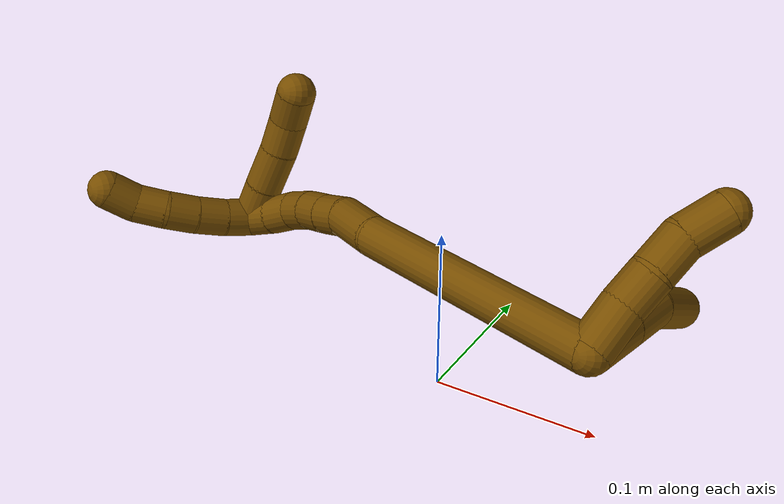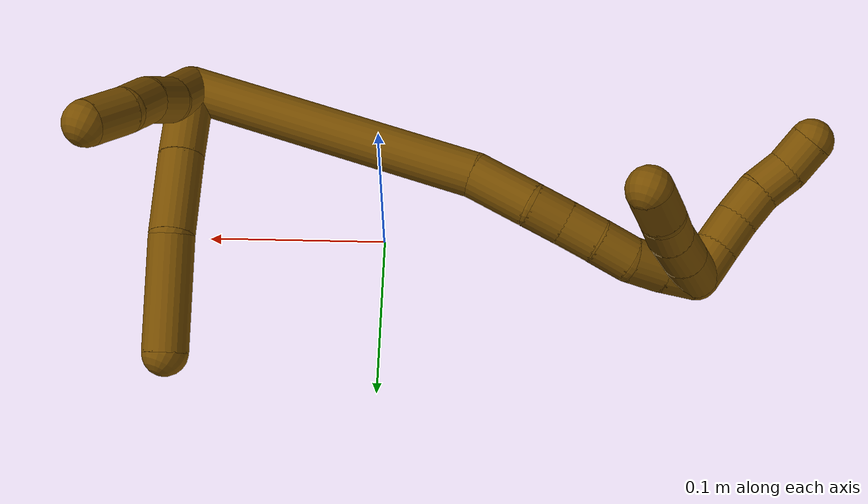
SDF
<sdf version="1.7">
 <world name="default">
  <model name="photoneo_s_sensor">
   <static>1</static>
   <pose>0 0 2 1.57079 1.57079 3.14159</pose>
   <link name="link">
    <inertial><mass>0.1</mass></inertial>
    <sensor name="sensor" type="depth">
     <update_rate>30</update_rate>
     <camera>
      <horizontal_fov>1.22</horizontal_fov>
      <image><width>1920</width><height>1200</height><format>B8G8R8</format></image>
      <clip><near>0.1</near><far>4</far></clip>
      <depth_camera><output>points</output></depth_camera>
     </camera>
     <plugin name="camera_plugin" filename="libgazebo_ros_depth_camera.so">
      <baseline>0.2</baseline>
      <alwaysOn>1</alwaysOn>
      <updateRate>0.0</updateRate>
      <cameraName>camera_ir</cameraName>
      <imageTopicName>/camera/color/image_raw</imageTopicName>
      <cameraInfoTopicName>/camera/color/camera_info</cameraInfoTopicName>
      <depthImageTopicName>/camera/depth/image_raw</depthImageTopicName>
      <depthImageCameraInfoTopicName>/camera/depth/camera_info</depthImageCameraInfoTopicName>
      <pointCloudTopicName>/camera/depth/points</pointCloudTopicName>
      <frameName>fr_optical</frameName>
      <pointCloudCutoff>0.1</pointCloudCutoff>
      <pointCloudCutoffMax>2.0</pointCloudCutoffMax>
      <distortionK1>0</distortionK1>
      <distortionK2>0</distortionK2>
      <distortionK3>0</distortionK3>
      <distortionT1>0</distortionT1>
      <distortionT2>0</distortionT2>
      <CxPrime>0</CxPrime>
      <Cx>0</Cx>
      <Cy>0</Cy>
      <focalLength>0</focalLength>
      <hackBaseline>0</hackBaseline>
     </plugin>
    </sensor>
   </link>
  </model>
  <model name="bin">
   <static>1</static>
   <link name="bottom">
    <collision name="collision-bottom">
     <pose>0 0 -0.01 0 -0 0</pose>
     <geometry><box><size>0.8 0.6 0.02</size></box></geometry>
     <surface>
      <friction><ode><mu>100</mu><mu2>100</mu2></ode></friction>
      <contact><collide_bitmask>65535</collide_bitmask></contact>
     </surface>
    </collision>
   </link>
   <link name="west_wall">
    <collision name="collision-west_wall">
     <pose>-0.41 0 0.1 0 -0 0</pose>
     <geometry><box><size>0.02 0.6 0.2</size></box></geometry>
     <surface>
      <friction><ode><mu>100</mu><mu2>100</mu2></ode></friction>
      <contact><collide_bitmask>65535</collide_bitmask></contact>
     </surface>
    </collision>
   </link>
   <link name="east_wall">
    <collision name="collision-east_wall">
     <pose>0.41 0 0.1 0 -0 0</pose>
     <geometry><box><size>0.02 0.6 0.2</size></box></geometry>
     <surface>
      <friction><ode><mu>100</mu><mu2>100</mu2></ode></friction>
      <contact><collide_bitmask>65535</collide_bitmask></contact>
     </surface>
    </collision>
   </link>
   <link name="south_wall">
    <collision name="collision-south_wall">
     <pose>0 -0.31 0.1 0 -0 0</pose>
     <geometry><box><size>0.8 0.02 0.2</size></box></geometry>
     <surface>
      <friction><ode><mu>100</mu><mu2>100</mu2></ode></friction>
      <contact><collide_bitmask>65535</collide_bitmask></contact>
     </surface>
    </collision>
   </link>
   <link name="north_wall">
    <collision name="collision-north_wall">
     <pose>0 0.31 0.1 0 -0 0</pose>
     <geometry><box><size>0.8 0.02 0.2</size></box></geometry>
     <surface>
      <friction><ode><mu>100</mu><mu2>100</mu2></ode></friction>
      <contact><collide_bitmask>65535</collide_bitmask></contact>
     </surface>
    </collision>
   </link>
  </model>
  <model name="12">
   <static>0</static>
   <link name="12">
    <collision name="collision-cylinder-e_1_2_8">
     <pose>-0.006077 0.000984 0.019783 -0.049717 -0.297708 0.007457</pose>
     <geometry><cylinder><radius>0.0125</radius><length>0.041438</length></cylinder></geometry>
     <surface>
      <friction><ode><mu>1.16</mu><mu2>1.16</mu2><slip1>0</slip1><slip2>0</slip2></ode></friction>
      <contact><ode><kp>1e+06</kp><kd>1</kd><max_vel>0</max_vel><min_depth>0.001</min_depth></ode></contact>
     </surface>
    </collision>
    <visual name="visual-cylinder-e_1_2_8">
     <pose>-0.006077 0.000984 0.019783 -0.049717 -0.297708 0.007457</pose>
     <geometry><cylinder><radius>0.0125</radius><length>0.041438</length></cylinder></geometry>
     <material><ambient>0.466667 0.301961 0 1</ambient></material>
    </visual>
    <collision name="collision-cylinder-e_2_8_9">
     <pose>-0.019245 0.003773 0.061325 -0.082748 -0.313986 0.013106</pose>
     <geometry><cylinder><radius>0.0125</radius><length>0.045911</length></cylinder></geometry>
     <surface>
      <friction><ode><mu>1.16</mu><mu2>1.16</mu2><slip1>0</slip1><slip2>0</slip2></ode></friction>
      <contact><ode><kp>1e+06</kp><kd>1</kd><max_vel>0</max_vel><min_depth>0.001</min_depth></ode></contact>
     </surface>
    </collision>
    <visual name="visual-cylinder-e_2_8_9">
     <pose>-0.019245 0.003773 0.061325 -0.082748 -0.313986 0.013106</pose>
     <geometry><cylinder><radius>0.0125</radius><length>0.045911</length></cylinder></geometry>
     <material><ambient>0.466667 0.301961 0 1</ambient></material>
    </visual>
    <collision name="collision-cylinder-e_3_9_6">
     <pose>-0.033481 0.016056 0.111726 -0.350706 -0.230165 0.040954</pose>
     <geometry><cylinder><radius>0.0125</radius><length>0.062651</length></cylinder></geometry>
     <surface>
      <friction><ode><mu>1.16</mu><mu2>1.16</mu2><slip1>0</slip1><slip2>0</slip2></ode></friction>
      <contact><ode><kp>1e+06</kp><kd>1</kd><max_vel>0</max_vel><min_depth>0.001</min_depth></ode></contact>
     </surface>
    </collision>
    <visual name="visual-cylinder-e_3_9_6">
     <pose>-0.033481 0.016056 0.111726 -0.350706 -0.230165 0.040954</pose>
     <geometry><cylinder><radius>0.0125</radius><length>0.062651</length></cylinder></geometry>
     <material><ambient>0.466667 0.301961 0 1</ambient></material>
    </visual>
    <collision name="collision-cylinder-e_1_2_10">
     <pose>-0.002955 -0.010514 0.009181 0.853023 -0.208597 -0.095061</pose>
     <geometry><cylinder><radius>0.0125</radius><length>0.028535</length></cylinder></geometry>
     <surface>
      <friction><ode><mu>1.16</mu><mu2>1.16</mu2><slip1>0</slip1><slip2>0</slip2></ode></friction>
      <contact><ode><kp>1e+06</kp><kd>1</kd><max_vel>0</max_vel><min_depth>0.001</min_depth></ode></contact>
     </surface>
    </collision>
    <visual name="visual-cylinder-e_1_2_10">
     <pose>-0.002955 -0.010514 0.009181 0.853023 -0.208597 -0.095061</pose>
     <geometry><cylinder><radius>0.0125</radius><length>0.028535</length></cylinder></geometry>
     <material><ambient>0.466667 0.301961 0 1</ambient></material>
    </visual>
    <collision name="collision-cylinder-e_2_10_11">
     <pose>-0.006327 -0.030459 0.023906 1.03926 -0.038142 -0.021822</pose>
     <geometry><cylinder><radius>0.0125</radius><length>0.021894</length></cylinder></geometry>
     <surface>
      <friction><ode><mu>1.16</mu><mu2>1.16</mu2><slip1>0</slip1><slip2>0</slip2></ode></friction>
      <contact><ode><kp>1e+06</kp><kd>1</kd><max_vel>0</max_vel><min_depth>0.001</min_depth></ode></contact>
     </surface>
    </collision>
    <visual name="visual-cylinder-e_2_10_11">
     <pose>-0.006327 -0.030459 0.023906 1.03926 -0.038142 -0.021822</pose>
     <geometry><cylinder><radius>0.0125</radius><length>0.021894</length></cylinder></geometry>
     <material><ambient>0.466667 0.301961 0 1</ambient></material>
    </visual>
    <collision name="collision-cylinder-e_3_11_12">
     <pose>-0.00838 -0.048446 0.037348 0.825452 -0.139558 -0.061189</pose>
     <geometry><cylinder><radius>0.0125</radius><length>0.023518</length></cylinder></geometry>
     <surface>
      <friction><ode><mu>1.16</mu><mu2>1.16</mu2><slip1>0</slip1><slip2>0</slip2></ode></friction>
      <contact><ode><kp>1e+06</kp><kd>1</kd><max_vel>0</max_vel><min_depth>0.001</min_depth></ode></contact>
     </surface>
    </collision>
    <visual name="visual-cylinder-e_3_11_12">
     <pose>-0.00838 -0.048446 0.037348 0.825452 -0.139558 -0.061189</pose>
     <geometry><cylinder><radius>0.0125</radius><length>0.023518</length></cylinder></geometry>
     <material><ambient>0.466667 0.301961 0 1</ambient></material>
    </visual>
    <collision name="collision-cylinder-e_4_12_5">
     <pose>-0.007876 -0.06578 0.05463 0.752018 0.16502 0.065274</pose>
     <geometry><cylinder><radius>0.0125</radius><length>0.026053</length></cylinder></geometry>
     <surface>
      <friction><ode><mu>1.16</mu><mu2>1.16</mu2><slip1>0</slip1><slip2>0</slip2></ode></friction>
      <contact><ode><kp>1e+06</kp><kd>1</kd><max_vel>0</max_vel><min_depth>0.001</min_depth></ode></contact>
     </surface>
    </collision>
    <visual name="visual-cylinder-e_4_12_5">
     <pose>-0.007876 -0.06578 0.05463 0.752018 0.16502 0.065274</pose>
     <geometry><cylinder><radius>0.0125</radius><length>0.026053</length></cylinder></geometry>
     <material><ambient>0.466667 0.301961 0 1</ambient></material>
    </visual>
    <collision name="collision-cylinder-e_1_2_13">
     <pose>-0.079486 0.021664 -0.003107 -1.71322 -1.30212 1.44209</pose>
     <geometry><cylinder><radius>0.0125</radius><length>0.164888</length></cylinder></geometry>
     <surface>
      <friction><ode><mu>1.16</mu><mu2>1.16</mu2><slip1>0</slip1><slip2>0</slip2></ode></friction>
      <contact><ode><kp>1e+06</kp><kd>1</kd><max_vel>0</max_vel><min_depth>0.001</min_depth></ode></contact>
     </surface>
    </collision>
    <visual name="visual-cylinder-e_1_2_13">
     <pose>-0.079486 0.021664 -0.003107 -1.71322 -1.30212 1.44209</pose>
     <geometry><cylinder><radius>0.0125</radius><length>0.164888</length></cylinder></geometry>
     <material><ambient>0.466667 0.301961 0 1</ambient></material>
    </visual>
    <collision name="collision-cylinder-e_2_13_14">
     <pose>-0.175497 0.04813 -0.003555 -1.0653 -1.25011 0.804335</pose>
     <geometry><cylinder><radius>0.0125</radius><length>0.034825</length></cylinder></geometry>
     <surface>
      <friction><ode><mu>1.16</mu><mu2>1.16</mu2><slip1>0</slip1><slip2>0</slip2></ode></friction>
      <contact><ode><kp>1e+06</kp><kd>1</kd><max_vel>0</max_vel><min_depth>0.001</min_depth></ode></contact>
     </surface>
    </collision>
    <visual name="visual-cylinder-e_2_13_14">
     <pose>-0.175497 0.04813 -0.003555 -1.0653 -1.25011 0.804335</pose>
     <geometry><cylinder><radius>0.0125</radius><length>0.034825</length></cylinder></geometry>
     <material><ambient>0.466667 0.301961 0 1</ambient></material>
    </visual>
    <collision name="collision-cylinder-e_3_14_15">
     <pose>-0.200653 0.057946 -0.000233 -1.43911 -1.04079 0.930789</pose>
     <geometry><cylinder><radius>0.0125</radius><length>0.020007</length></cylinder></geometry>
     <surface>
      <friction><ode><mu>1.16</mu><mu2>1.16</mu2><slip1>0</slip1><slip2>0</slip2></ode></friction>
      <contact><ode><kp>1e+06</kp><kd>1</kd><max_vel>0</max_vel><min_depth>0.001</min_depth></ode></contact>
     </surface>
    </collision>
    <visual name="visual-cylinder-e_3_14_15">
     <pose>-0.200653 0.057946 -0.000233 -1.43911 -1.04079 0.930789</pose>
     <geometry><cylinder><radius>0.0125</radius><length>0.020007</length></cylinder></geometry>
     <material><ambient>0.466667 0.301961 0 1</ambient></material>
    </visual>
    <collision name="collision-cylinder-e_4_15_16">
     <pose>-0.218144 0.067677 0.001405 -1.36724 -1.07276 0.902077</pose>
     <geometry><cylinder><radius>0.0125</radius><length>0.02017</length></cylinder></geometry>
     <surface>
      <friction><ode><mu>1.16</mu><mu2>1.16</mu2><slip1>0</slip1><slip2>0</slip2></ode></friction>
      <contact><ode><kp>1e+06</kp><kd>1</kd><max_vel>0</max_vel><min_depth>0.001</min_depth></ode></contact>
     </surface>
    </collision>
    <visual name="visual-cylinder-e_4_15_16">
     <pose>-0.218144 0.067677 0.001405 -1.36724 -1.07276 0.902077</pose>
     <geometry><cylinder><radius>0.0125</radius><length>0.02017</length></cylinder></geometry>
     <material><ambient>0.466667 0.301961 0 1</ambient></material>
    </visual>
    <collision name="collision-cylinder-e_5_16_17">
     <pose>-0.235207 0.078092 0.003073 -1.44956 -0.960352 0.864309</pose>
     <geometry><cylinder><radius>0.0125</radius><length>0.020024</length></cylinder></geometry>
     <surface>
      <friction><ode><mu>1.16</mu><mu2>1.16</mu2><slip1>0</slip1><slip2>0</slip2></ode></friction>
      <contact><ode><kp>1e+06</kp><kd>1</kd><max_vel>0</max_vel><min_depth>0.001</min_depth></ode></contact>
     </surface>
    </collision>
    <visual name="visual-cylinder-e_5_16_17">
     <pose>-0.235207 0.078092 0.003073 -1.44956 -0.960352 0.864309</pose>
     <geometry><cylinder><radius>0.0125</radius><length>0.020024</length></cylinder></geometry>
     <material><ambient>0.466667 0.301961 0 1</ambient></material>
    </visual>
    <collision name="collision-cylinder-e_6_17_18">
     <pose>-0.250598 0.090486 0.001861 -1.84799 -0.801209 1.02221</pose>
     <geometry><cylinder><radius>0.0125</radius><length>0.020013</length></cylinder></geometry>
     <surface>
      <friction><ode><mu>1.16</mu><mu2>1.16</mu2><slip1>0</slip1><slip2>0</slip2></ode></friction>
      <contact><ode><kp>1e+06</kp><kd>1</kd><max_vel>0</max_vel><min_depth>0.001</min_depth></ode></contact>
     </surface>
    </collision>
    <visual name="visual-cylinder-e_6_17_18">
     <pose>-0.250598 0.090486 0.001861 -1.84799 -0.801209 1.02221</pose>
     <geometry><cylinder><radius>0.0125</radius><length>0.020013</length></cylinder></geometry>
     <material><ambient>0.466667 0.301961 0 1</ambient></material>
    </visual>
    <collision name="collision-cylinder-e_7_18_1">
     <pose>-0.26541 0.103184 -0.002608 -1.9745 -0.86294 1.21784</pose>
     <geometry><cylinder><radius>0.0125</radius><length>0.020074</length></cylinder></geometry>
     <surface>
      <friction><ode><mu>1.16</mu><mu2>1.16</mu2><slip1>0</slip1><slip2>0</slip2></ode></friction>
      <contact><ode><kp>1e+06</kp><kd>1</kd><max_vel>0</max_vel><min_depth>0.001</min_depth></ode></contact>
     </surface>
    </collision>
    <visual name="visual-cylinder-e_7_18_1">
     <pose>-0.26541 0.103184 -0.002608 -1.9745 -0.86294 1.21784</pose>
     <geometry><cylinder><radius>0.0125</radius><length>0.020074</length></cylinder></geometry>
     <material><ambient>0.466667 0.301961 0 1</ambient></material>
    </visual>
    <collision name="collision-cylinder-e_1_1_19">
     <pose>-0.275072 0.109943 -0.014932 -3.0642 -0.205069 2.42187</pose>
     <geometry><cylinder><radius>0.0125</radius><length>0.02</length></cylinder></geometry>
     <surface>
      <friction><ode><mu>1.16</mu><mu2>1.16</mu2><slip1>0</slip1><slip2>0</slip2></ode></friction>
      <contact><ode><kp>1e+06</kp><kd>1</kd><max_vel>0</max_vel><min_depth>0.001</min_depth></ode></contact>
     </surface>
    </collision>
    <visual name="visual-cylinder-e_1_1_19">
     <pose>-0.275072 0.109943 -0.014932 -3.0642 -0.205069 2.42187</pose>
     <geometry><cylinder><radius>0.0125</radius><length>0.02</length></cylinder></geometry>
     <material><ambient>0.466667 0.301961 0 1</ambient></material>
    </visual>
    <collision name="collision-cylinder-e_2_19_20">
     <pose>-0.279694 0.11063 -0.034353 3.13433 -0.261535 -3.08641</pose>
     <geometry><cylinder><radius>0.0125</radius><length>0.02</length></cylinder></geometry>
     <surface>
      <friction><ode><mu>1.16</mu><mu2>1.16</mu2><slip1>0</slip1><slip2>0</slip2></ode></friction>
      <contact><ode><kp>1e+06</kp><kd>1</kd><max_vel>0</max_vel><min_depth>0.001</min_depth></ode></contact>
     </surface>
    </collision>
    <visual name="visual-cylinder-e_2_19_20">
     <pose>-0.279694 0.11063 -0.034353 3.13433 -0.261535 -3.08641</pose>
     <geometry><cylinder><radius>0.0125</radius><length>0.02</length></cylinder></geometry>
     <material><ambient>0.466667 0.301961 0 1</ambient></material>
    </visual>
    <collision name="collision-cylinder-e_3_20_21">
     <pose>-0.285709 0.110106 -0.053396 3.09335 -0.350082 -2.87041</pose>
     <geometry><cylinder><radius>0.0125</radius><length>0.02</length></cylinder></geometry>
     <surface>
      <friction><ode><mu>1.16</mu><mu2>1.16</mu2><slip1>0</slip1><slip2>0</slip2></ode></friction>
      <contact><ode><kp>1e+06</kp><kd>1</kd><max_vel>0</max_vel><min_depth>0.001</min_depth></ode></contact>
     </surface>
    </collision>
    <visual name="visual-cylinder-e_3_20_21">
     <pose>-0.285709 0.110106 -0.053396 3.09335 -0.350082 -2.87041</pose>
     <geometry><cylinder><radius>0.0125</radius><length>0.02</length></cylinder></geometry>
     <material><ambient>0.466667 0.301961 0 1</ambient></material>
    </visual>
    <collision name="collision-cylinder-e_4_21_22">
     <pose>-0.294464 0.109937 -0.071237 -3.10804 -0.5616 3.02537</pose>
     <geometry><cylinder><radius>0.0125</radius><length>0.02</length></cylinder></geometry>
     <surface>
      <friction><ode><mu>1.16</mu><mu2>1.16</mu2><slip1>0</slip1><slip2>0</slip2></ode></friction>
      <contact><ode><kp>1e+06</kp><kd>1</kd><max_vel>0</max_vel><min_depth>0.001</min_depth></ode></contact>
     </surface>
    </collision>
    <visual name="visual-cylinder-e_4_21_22">
     <pose>-0.294464 0.109937 -0.071237 -3.10804 -0.5616 3.02537</pose>
     <geometry><cylinder><radius>0.0125</radius><length>0.02</length></cylinder></geometry>
     <material><ambient>0.466667 0.301961 0 1</ambient></material>
    </visual>
    <collision name="collision-cylinder-e_5_22_4">
     <pose>-0.304321 0.107481 -0.088179 2.82915 -0.470309 -1.97846</pose>
     <geometry><cylinder><radius>0.0125</radius><length>0.02</length></cylinder></geometry>
     <surface>
      <friction><ode><mu>1.16</mu><mu2>1.16</mu2><slip1>0</slip1><slip2>0</slip2></ode></friction>
      <contact><ode><kp>1e+06</kp><kd>1</kd><max_vel>0</max_vel><min_depth>0.001</min_depth></ode></contact>
     </surface>
    </collision>
    <visual name="visual-cylinder-e_5_22_4">
     <pose>-0.304321 0.107481 -0.088179 2.82915 -0.470309 -1.97846</pose>
     <geometry><cylinder><radius>0.0125</radius><length>0.02</length></cylinder></geometry>
     <material><ambient>0.466667 0.301961 0 1</ambient></material>
    </visual>
    <collision name="collision-cylinder-e_1_1_23">
     <pose>-0.272431 0.095715 -0.004733 1.53827 0.044824 0.04339</pose>
     <geometry><cylinder><radius>0.0125</radius><length>0.026983</length></cylinder></geometry>
     <surface>
      <friction><ode><mu>1.16</mu><mu2>1.16</mu2><slip1>0</slip1><slip2>0</slip2></ode></friction>
      <contact><ode><kp>1e+06</kp><kd>1</kd><max_vel>0</max_vel><min_depth>0.001</min_depth></ode></contact>
     </surface>
    </collision>
    <visual name="visual-cylinder-e_1_1_23">
     <pose>-0.272431 0.095715 -0.004733 1.53827 0.044824 0.04339</pose>
     <geometry><cylinder><radius>0.0125</radius><length>0.026983</length></cylinder></geometry>
     <material><ambient>0.466667 0.301961 0 1</ambient></material>
    </visual>
    <collision name="collision-cylinder-e_2_23_24">
     <pose>-0.271357 0.068042 -0.003321 1.50237 0.03298 0.030798</pose>
     <geometry><cylinder><radius>0.0125</radius><length>0.028485</length></cylinder></geometry>
     <surface>
      <friction><ode><mu>1.16</mu><mu2>1.16</mu2><slip1>0</slip1><slip2>0</slip2></ode></friction>
      <contact><ode><kp>1e+06</kp><kd>1</kd><max_vel>0</max_vel><min_depth>0.001</min_depth></ode></contact>
     </surface>
    </collision>
    <visual name="visual-cylinder-e_2_23_24">
     <pose>-0.271357 0.068042 -0.003321 1.50237 0.03298 0.030798</pose>
     <geometry><cylinder><radius>0.0125</radius><length>0.028485</length></cylinder></geometry>
     <material><ambient>0.466667 0.301961 0 1</ambient></material>
    </visual>
    <collision name="collision-cylinder-e_3_24_25">
     <pose>-0.271304 0.042808 -0.002134 1.55141 -0.037781 -0.037056</pose>
     <geometry><cylinder><radius>0.0125</radius><length>0.022084</length></cylinder></geometry>
     <surface>
      <friction><ode><mu>1.16</mu><mu2>1.16</mu2><slip1>0</slip1><slip2>0</slip2></ode></friction>
      <contact><ode><kp>1e+06</kp><kd>1</kd><max_vel>0</max_vel><min_depth>0.001</min_depth></ode></contact>
     </surface>
    </collision>
    <visual name="visual-cylinder-e_3_24_25">
     <pose>-0.271304 0.042808 -0.002134 1.55141 -0.037781 -0.037056</pose>
     <geometry><cylinder><radius>0.0125</radius><length>0.022084</length></cylinder></geometry>
     <material><ambient>0.466667 0.301961 0 1</ambient></material>
    </visual>
    <collision name="collision-cylinder-e_4_25_3">
     <pose>-0.270037 0.020825 -0.003707 1.73248 0.150647 0.177081</pose>
     <geometry><cylinder><radius>0.0125</radius><length>0.022447</length></cylinder></geometry>
     <surface>
      <friction><ode><mu>1.16</mu><mu2>1.16</mu2><slip1>0</slip1><slip2>0</slip2></ode></friction>
      <contact><ode><kp>1e+06</kp><kd>1</kd><max_vel>0</max_vel><min_depth>0.001</min_depth></ode></contact>
     </surface>
    </collision>
    <visual name="visual-cylinder-e_4_25_3">
     <pose>-0.270037 0.020825 -0.003707 1.73248 0.150647 0.177081</pose>
     <geometry><cylinder><radius>0.0125</radius><length>0.022447</length></cylinder></geometry>
     <material><ambient>0.466667 0.301961 0 1</ambient></material>
    </visual>
    <collision name="collision-sphere-3">
     <pose>-0.268352 0.009873 -0.005493 0 -0 0</pose>
     <geometry><sphere><radius>0.0125</radius></sphere></geometry>
     <surface>
      <friction><ode><mu>1.16</mu><mu2>1.16</mu2><slip1>0</slip1><slip2>0</slip2></ode></friction>
      <contact><ode><kp>1e+06</kp><kd>1</kd><max_vel>0</max_vel><min_depth>0.001</min_depth></ode></contact>
     </surface>
    </collision>
    <visual name="visual-sphere-3">
     <pose>-0.268352 0.009873 -0.005493 0 -0 0</pose>
     <geometry><sphere><radius>0.0125</radius></sphere></geometry>
     <material><ambient>0.466667 0.301961 0 1</ambient></material>
    </visual>
    <collision name="collision-sphere-25">
     <pose>-0.271721 0.031776 -0.00192 0 -0 0</pose>
     <geometry><sphere><radius>0.0125</radius></sphere></geometry>
     <surface>
      <friction><ode><mu>1.16</mu><mu2>1.16</mu2><slip1>0</slip1><slip2>0</slip2></ode></friction>
      <contact><ode><kp>1e+06</kp><kd>1</kd><max_vel>0</max_vel><min_depth>0.001</min_depth></ode></contact>
     </surface>
    </collision>
    <visual name="visual-sphere-25">
     <pose>-0.271721 0.031776 -0.00192 0 -0 0</pose>
     <geometry><sphere><radius>0.0125</radius></sphere></geometry>
     <material><ambient>0.466667 0.301961 0 1</ambient></material>
    </visual>
    <collision name="collision-sphere-24">
     <pose>-0.270887 0.053841 -0.002348 0 -0 0</pose>
     <geometry><sphere><radius>0.0125</radius></sphere></geometry>
     <surface>
      <friction><ode><mu>1.16</mu><mu2>1.16</mu2><slip1>0</slip1><slip2>0</slip2></ode></friction>
      <contact><ode><kp>1e+06</kp><kd>1</kd><max_vel>0</max_vel><min_depth>0.001</min_depth></ode></contact>
     </surface>
    </collision>
    <visual name="visual-sphere-24">
     <pose>-0.270887 0.053841 -0.002348 0 -0 0</pose>
     <geometry><sphere><radius>0.0125</radius></sphere></geometry>
     <material><ambient>0.466667 0.301961 0 1</ambient></material>
    </visual>
    <collision name="collision-sphere-23">
     <pose>-0.271826 0.082244 -0.004295 0 -0 0</pose>
     <geometry><sphere><radius>0.0125</radius></sphere></geometry>
     <surface>
      <friction><ode><mu>1.16</mu><mu2>1.16</mu2><slip1>0</slip1><slip2>0</slip2></ode></friction>
      <contact><ode><kp>1e+06</kp><kd>1</kd><max_vel>0</max_vel><min_depth>0.001</min_depth></ode></contact>
     </surface>
    </collision>
    <visual name="visual-sphere-23">
     <pose>-0.271826 0.082244 -0.004295 0 -0 0</pose>
     <geometry><sphere><radius>0.0125</radius></sphere></geometry>
     <material><ambient>0.466667 0.301961 0 1</ambient></material>
    </visual>
    <collision name="collision-sphere-4">
     <pose>-0.308853 0.104741 -0.096662 0 -0 0</pose>
     <geometry><sphere><radius>0.0125</radius></sphere></geometry>
     <surface>
      <friction><ode><mu>1.16</mu><mu2>1.16</mu2><slip1>0</slip1><slip2>0</slip2></ode></friction>
      <contact><ode><kp>1e+06</kp><kd>1</kd><max_vel>0</max_vel><min_depth>0.001</min_depth></ode></contact>
     </surface>
    </collision>
    <visual name="visual-sphere-4">
     <pose>-0.308853 0.104741 -0.096662 0 -0 0</pose>
     <geometry><sphere><radius>0.0125</radius></sphere></geometry>
     <material><ambient>0.466667 0.301961 0 1</ambient></material>
    </visual>
    <collision name="collision-sphere-22">
     <pose>-0.29979 0.110221 -0.079697 0 -0 0</pose>
     <geometry><sphere><radius>0.0125</radius></sphere></geometry>
     <surface>
      <friction><ode><mu>1.16</mu><mu2>1.16</mu2><slip1>0</slip1><slip2>0</slip2></ode></friction>
      <contact><ode><kp>1e+06</kp><kd>1</kd><max_vel>0</max_vel><min_depth>0.001</min_depth></ode></contact>
     </surface>
    </collision>
    <visual name="visual-sphere-22">
     <pose>-0.29979 0.110221 -0.079697 0 -0 0</pose>
     <geometry><sphere><radius>0.0125</radius></sphere></geometry>
     <material><ambient>0.466667 0.301961 0 1</ambient></material>
    </visual>
    <collision name="collision-sphere-21">
     <pose>-0.289139 0.109653 -0.062778 0 -0 0</pose>
     <geometry><sphere><radius>0.0125</radius></sphere></geometry>
     <surface>
      <friction><ode><mu>1.16</mu><mu2>1.16</mu2><slip1>0</slip1><slip2>0</slip2></ode></friction>
      <contact><ode><kp>1e+06</kp><kd>1</kd><max_vel>0</max_vel><min_depth>0.001</min_depth></ode></contact>
     </surface>
    </collision>
    <visual name="visual-sphere-21">
     <pose>-0.289139 0.109653 -0.062778 0 -0 0</pose>
     <geometry><sphere><radius>0.0125</radius></sphere></geometry>
     <material><ambient>0.466667 0.301961 0 1</ambient></material>
    </visual>
    <collision name="collision-sphere-20">
     <pose>-0.282279 0.110559 -0.044013 0 -0 0</pose>
     <geometry><sphere><radius>0.0125</radius></sphere></geometry>
     <surface>
      <friction><ode><mu>1.16</mu><mu2>1.16</mu2><slip1>0</slip1><slip2>0</slip2></ode></friction>
      <contact><ode><kp>1e+06</kp><kd>1</kd><max_vel>0</max_vel><min_depth>0.001</min_depth></ode></contact>
     </surface>
    </collision>
    <visual name="visual-sphere-20">
     <pose>-0.282279 0.110559 -0.044013 0 -0 0</pose>
     <geometry><sphere><radius>0.0125</radius></sphere></geometry>
     <material><ambient>0.466667 0.301961 0 1</ambient></material>
    </visual>
    <collision name="collision-sphere-11">
     <pose>-0.006744 -0.039888 0.02945 0 -0 0</pose>
     <geometry><sphere><radius>0.0125</radius></sphere></geometry>
     <surface>
      <friction><ode><mu>1.16</mu><mu2>1.16</mu2><slip1>0</slip1><slip2>0</slip2></ode></friction>
      <contact><ode><kp>1e+06</kp><kd>1</kd><max_vel>0</max_vel><min_depth>0.001</min_depth></ode></contact>
     </surface>
    </collision>
    <visual name="visual-sphere-11">
     <pose>-0.006744 -0.039888 0.02945 0 -0 0</pose>
     <geometry><sphere><radius>0.0125</radius></sphere></geometry>
     <material><ambient>0.466667 0.301961 0 1</ambient></material>
    </visual>
    <collision name="collision-sphere-10">
     <pose>-0.005909 -0.021029 0.018361 0 -0 0</pose>
     <geometry><sphere><radius>0.0125</radius></sphere></geometry>
     <surface>
      <friction><ode><mu>1.16</mu><mu2>1.16</mu2><slip1>0</slip1><slip2>0</slip2></ode></friction>
      <contact><ode><kp>1e+06</kp><kd>1</kd><max_vel>0</max_vel><min_depth>0.001</min_depth></ode></contact>
     </surface>
    </collision>
    <visual name="visual-sphere-10">
     <pose>-0.005909 -0.021029 0.018361 0 -0 0</pose>
     <geometry><sphere><radius>0.0125</radius></sphere></geometry>
     <material><ambient>0.466667 0.301961 0 1</ambient></material>
    </visual>
    <collision name="collision-sphere-6">
     <pose>-0.040628 0.026535 0.140369 0 -0 0</pose>
     <geometry><sphere><radius>0.0125</radius></sphere></geometry>
     <surface>
      <friction><ode><mu>1.16</mu><mu2>1.16</mu2><slip1>0</slip1><slip2>0</slip2></ode></friction>
      <contact><ode><kp>1e+06</kp><kd>1</kd><max_vel>0</max_vel><min_depth>0.001</min_depth></ode></contact>
     </surface>
    </collision>
    <visual name="visual-sphere-6">
     <pose>-0.040628 0.026535 0.140369 0 -0 0</pose>
     <geometry><sphere><radius>0.0125</radius></sphere></geometry>
     <material><ambient>0.466667 0.301961 0 1</ambient></material>
    </visual>
    <collision name="collision-sphere-9">
     <pose>-0.026335 0.005578 0.083083 0 -0 0</pose>
     <geometry><sphere><radius>0.0125</radius></sphere></geometry>
     <surface>
      <friction><ode><mu>1.16</mu><mu2>1.16</mu2><slip1>0</slip1><slip2>0</slip2></ode></friction>
      <contact><ode><kp>1e+06</kp><kd>1</kd><max_vel>0</max_vel><min_depth>0.001</min_depth></ode></contact>
     </surface>
    </collision>
    <visual name="visual-sphere-9">
     <pose>-0.026335 0.005578 0.083083 0 -0 0</pose>
     <geometry><sphere><radius>0.0125</radius></sphere></geometry>
     <material><ambient>0.466667 0.301961 0 1</ambient></material>
    </visual>
    <collision name="collision-sphere-2">
     <geometry><sphere><radius>0.0125</radius></sphere></geometry>
     <surface>
      <friction><ode><mu>1.16</mu><mu2>1.16</mu2><slip1>0</slip1><slip2>0</slip2></ode></friction>
      <contact><ode><kp>1e+06</kp><kd>1</kd><max_vel>0</max_vel><min_depth>0.001</min_depth></ode></contact>
     </surface>
    </collision>
    <visual name="visual-sphere-2">
     <geometry><sphere><radius>0.0125</radius></sphere></geometry>
     <material><ambient>0.466667 0.301961 0 1</ambient></material>
    </visual>
    <collision name="collision-sphere-19">
     <pose>-0.277108 0.1107 -0.024694 0 -0 0</pose>
     <geometry><sphere><radius>0.0125</radius></sphere></geometry>
     <surface>
      <friction><ode><mu>1.16</mu><mu2>1.16</mu2><slip1>0</slip1><slip2>0</slip2></ode></friction>
      <contact><ode><kp>1e+06</kp><kd>1</kd><max_vel>0</max_vel><min_depth>0.001</min_depth></ode></contact>
     </surface>
    </collision>
    <visual name="visual-sphere-19">
     <pose>-0.277108 0.1107 -0.024694 0 -0 0</pose>
     <geometry><sphere><radius>0.0125</radius></sphere></geometry>
     <material><ambient>0.466667 0.301961 0 1</ambient></material>
    </visual>
    <collision name="collision-sphere-8">
     <pose>-0.012155 0.001969 0.039566 0 -0 0</pose>
     <geometry><sphere><radius>0.0125</radius></sphere></geometry>
     <surface>
      <friction><ode><mu>1.16</mu><mu2>1.16</mu2><slip1>0</slip1><slip2>0</slip2></ode></friction>
      <contact><ode><kp>1e+06</kp><kd>1</kd><max_vel>0</max_vel><min_depth>0.001</min_depth></ode></contact>
     </surface>
    </collision>
    <visual name="visual-sphere-8">
     <pose>-0.012155 0.001969 0.039566 0 -0 0</pose>
     <geometry><sphere><radius>0.0125</radius></sphere></geometry>
     <material><ambient>0.466667 0.301961 0 1</ambient></material>
    </visual>
    <collision name="collision-sphere-12">
     <pose>-0.010016 -0.057003 0.045246 0 -0 0</pose>
     <geometry><sphere><radius>0.0125</radius></sphere></geometry>
     <surface>
      <friction><ode><mu>1.16</mu><mu2>1.16</mu2><slip1>0</slip1><slip2>0</slip2></ode></friction>
      <contact><ode><kp>1e+06</kp><kd>1</kd><max_vel>0</max_vel><min_depth>0.001</min_depth></ode></contact>
     </surface>
    </collision>
    <visual name="visual-sphere-12">
     <pose>-0.010016 -0.057003 0.045246 0 -0 0</pose>
     <geometry><sphere><radius>0.0125</radius></sphere></geometry>
     <material><ambient>0.466667 0.301961 0 1</ambient></material>
    </visual>
    <collision name="collision-sphere-5">
     <pose>-0.005736 -0.074558 0.064014 0 -0 0</pose>
     <geometry><sphere><radius>0.0125</radius></sphere></geometry>
     <surface>
      <friction><ode><mu>1.16</mu><mu2>1.16</mu2><slip1>0</slip1><slip2>0</slip2></ode></friction>
      <contact><ode><kp>1e+06</kp><kd>1</kd><max_vel>0</max_vel><min_depth>0.001</min_depth></ode></contact>
     </surface>
    </collision>
    <visual name="visual-sphere-5">
     <pose>-0.005736 -0.074558 0.064014 0 -0 0</pose>
     <geometry><sphere><radius>0.0125</radius></sphere></geometry>
     <material><ambient>0.466667 0.301961 0 1</ambient></material>
    </visual>
    <collision name="collision-sphere-13">
     <pose>-0.158972 0.043328 -0.006213 0 -0 0</pose>
     <geometry><sphere><radius>0.0125</radius></sphere></geometry>
     <surface>
      <friction><ode><mu>1.16</mu><mu2>1.16</mu2><slip1>0</slip1><slip2>0</slip2></ode></friction>
      <contact><ode><kp>1e+06</kp><kd>1</kd><max_vel>0</max_vel><min_depth>0.001</min_depth></ode></contact>
     </surface>
    </collision>
    <visual name="visual-sphere-13">
     <pose>-0.158972 0.043328 -0.006213 0 -0 0</pose>
     <geometry><sphere><radius>0.0125</radius></sphere></geometry>
     <material><ambient>0.466667 0.301961 0 1</ambient></material>
    </visual>
    <collision name="collision-sphere-14">
     <pose>-0.192022 0.052932 -0.000897 0 -0 0</pose>
     <geometry><sphere><radius>0.0125</radius></sphere></geometry>
     <surface>
      <friction><ode><mu>1.16</mu><mu2>1.16</mu2><slip1>0</slip1><slip2>0</slip2></ode></friction>
      <contact><ode><kp>1e+06</kp><kd>1</kd><max_vel>0</max_vel><min_depth>0.001</min_depth></ode></contact>
     </surface>
    </collision>
    <visual name="visual-sphere-14">
     <pose>-0.192022 0.052932 -0.000897 0 -0 0</pose>
     <geometry><sphere><radius>0.0125</radius></sphere></geometry>
     <material><ambient>0.466667 0.301961 0 1</ambient></material>
    </visual>
    <collision name="collision-sphere-15">
     <pose>-0.209284 0.062959 0.000431 0 -0 0</pose>
     <geometry><sphere><radius>0.0125</radius></sphere></geometry>
     <surface>
      <friction><ode><mu>1.16</mu><mu2>1.16</mu2><slip1>0</slip1><slip2>0</slip2></ode></friction>
      <contact><ode><kp>1e+06</kp><kd>1</kd><max_vel>0</max_vel><min_depth>0.001</min_depth></ode></contact>
     </surface>
    </collision>
    <visual name="visual-sphere-15">
     <pose>-0.209284 0.062959 0.000431 0 -0 0</pose>
     <geometry><sphere><radius>0.0125</radius></sphere></geometry>
     <material><ambient>0.466667 0.301961 0 1</ambient></material>
    </visual>
    <collision name="collision-sphere-16">
     <pose>-0.227004 0.072395 0.002379 0 -0 0</pose>
     <geometry><sphere><radius>0.0125</radius></sphere></geometry>
     <surface>
      <friction><ode><mu>1.16</mu><mu2>1.16</mu2><slip1>0</slip1><slip2>0</slip2></ode></friction>
      <contact><ode><kp>1e+06</kp><kd>1</kd><max_vel>0</max_vel><min_depth>0.001</min_depth></ode></contact>
     </surface>
    </collision>
    <visual name="visual-sphere-16">
     <pose>-0.227004 0.072395 0.002379 0 -0 0</pose>
     <geometry><sphere><radius>0.0125</radius></sphere></geometry>
     <material><ambient>0.466667 0.301961 0 1</ambient></material>
    </visual>
    <collision name="collision-sphere-17">
     <pose>-0.243411 0.083789 0.003767 0 -0 0</pose>
     <geometry><sphere><radius>0.0125</radius></sphere></geometry>
     <surface>
      <friction><ode><mu>1.16</mu><mu2>1.16</mu2><slip1>0</slip1><slip2>0</slip2></ode></friction>
      <contact><ode><kp>1e+06</kp><kd>1</kd><max_vel>0</max_vel><min_depth>0.001</min_depth></ode></contact>
     </surface>
    </collision>
    <visual name="visual-sphere-17">
     <pose>-0.243411 0.083789 0.003767 0 -0 0</pose>
     <geometry><sphere><radius>0.0125</radius></sphere></geometry>
     <material><ambient>0.466667 0.301961 0 1</ambient></material>
    </visual>
    <collision name="collision-sphere-18">
     <pose>-0.257784 0.097183 -4.4e-05 0 -0 0</pose>
     <geometry><sphere><radius>0.0125</radius></sphere></geometry>
     <surface>
      <friction><ode><mu>1.16</mu><mu2>1.16</mu2><slip1>0</slip1><slip2>0</slip2></ode></friction>
      <contact><ode><kp>1e+06</kp><kd>1</kd><max_vel>0</max_vel><min_depth>0.001</min_depth></ode></contact>
     </surface>
    </collision>
    <visual name="visual-sphere-18">
     <pose>-0.257784 0.097183 -4.4e-05 0 -0 0</pose>
     <geometry><sphere><radius>0.0125</radius></sphere></geometry>
     <material><ambient>0.466667 0.301961 0 1</ambient></material>
    </visual>
    <collision name="collision-sphere-1">
     <pose>-0.273035 0.109186 -0.005171 0 -0 0</pose>
     <geometry><sphere><radius>0.0125</radius></sphere></geometry>
     <surface>
      <friction><ode><mu>1.16</mu><mu2>1.16</mu2><slip1>0</slip1><slip2>0</slip2></ode></friction>
      <contact><ode><kp>1e+06</kp><kd>1</kd><max_vel>0</max_vel><min_depth>0.001</min_depth></ode></contact>
     </surface>
    </collision>
    <visual name="visual-sphere-1">
     <pose>-0.273035 0.109186 -0.005171 0 -0 0</pose>
     <geometry><sphere><radius>0.0125</radius></sphere></geometry>
     <material><ambient>0.466667 0.301961 0 1</ambient></material>
    </visual>
    <inertial>
     <pose>-0.136616 0.036685 0.010082 0 -0 0</pose>
     <mass>0.75</mass>
     <inertia>
      <ixx>0.000146</ixx>
      <ixy>0</ixy>
      <ixz>0</ixz>
      <iyy>0.000515</iyy>
      <iyz>0</iyz>
      <izz>0.000301</izz>
     </inertia>
    </inertial>
   </link>
   <pose>0.10512 -0.041498 0.084493 -1.81682 0.219547 -0.424609</pose>
  </model>
 </world>
</sdf>
